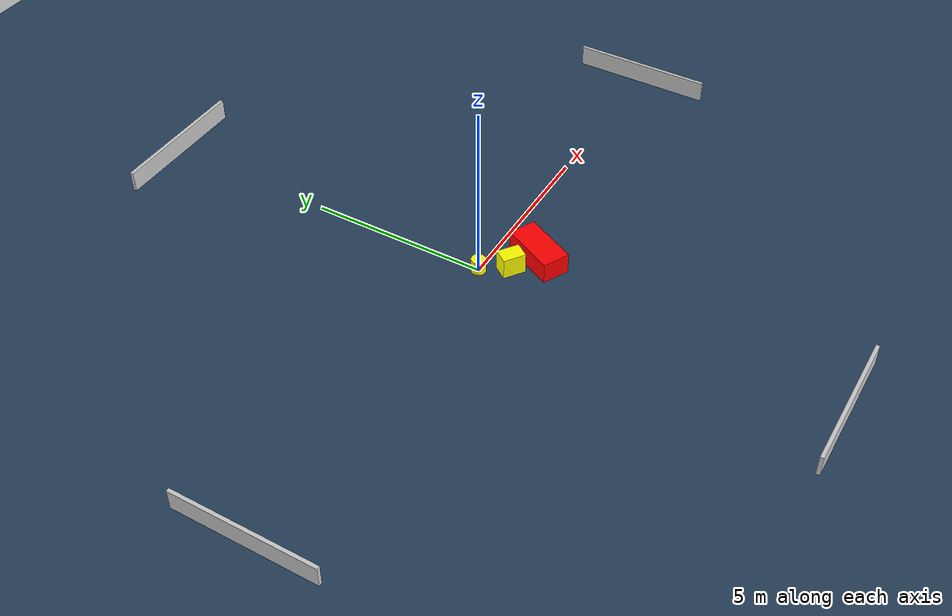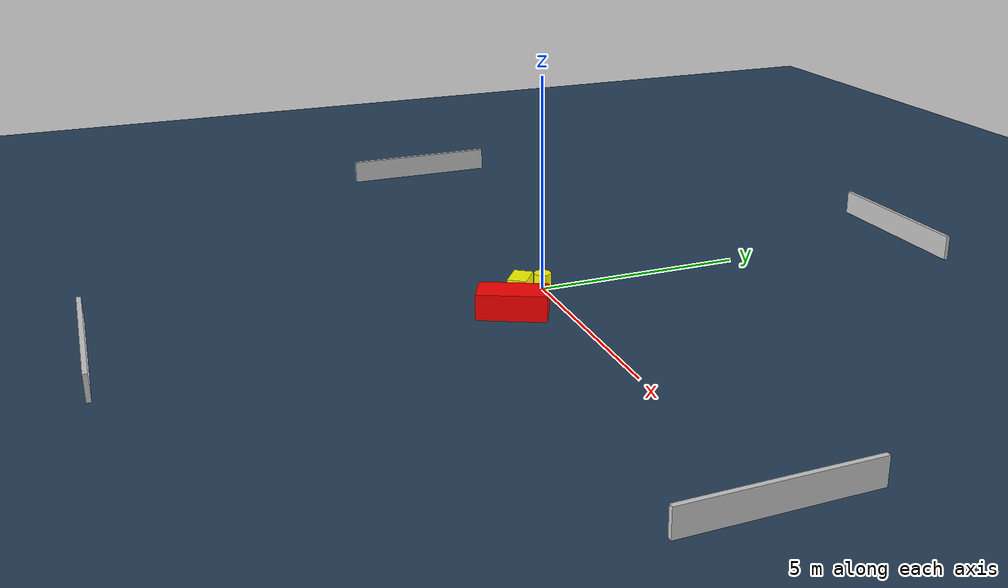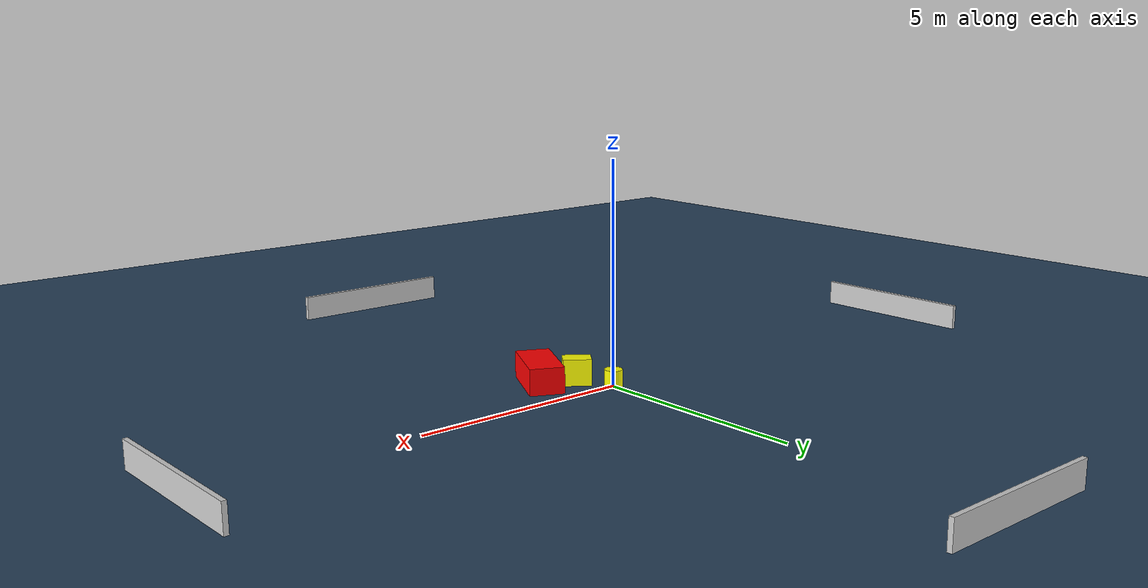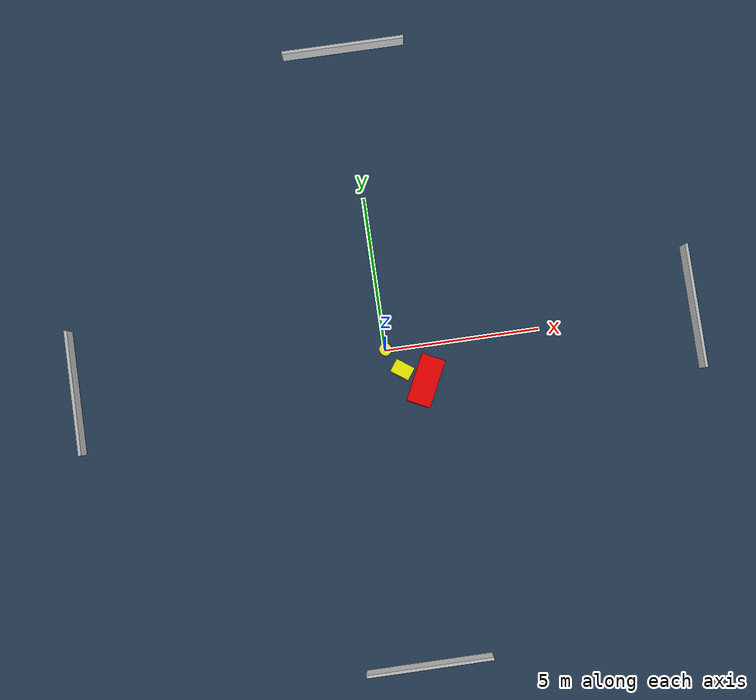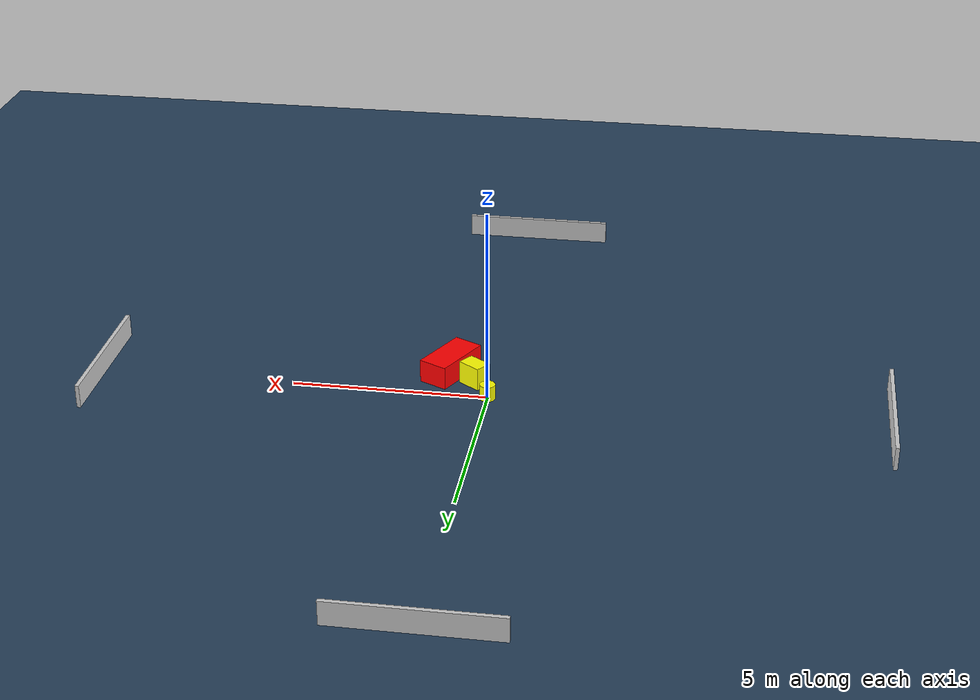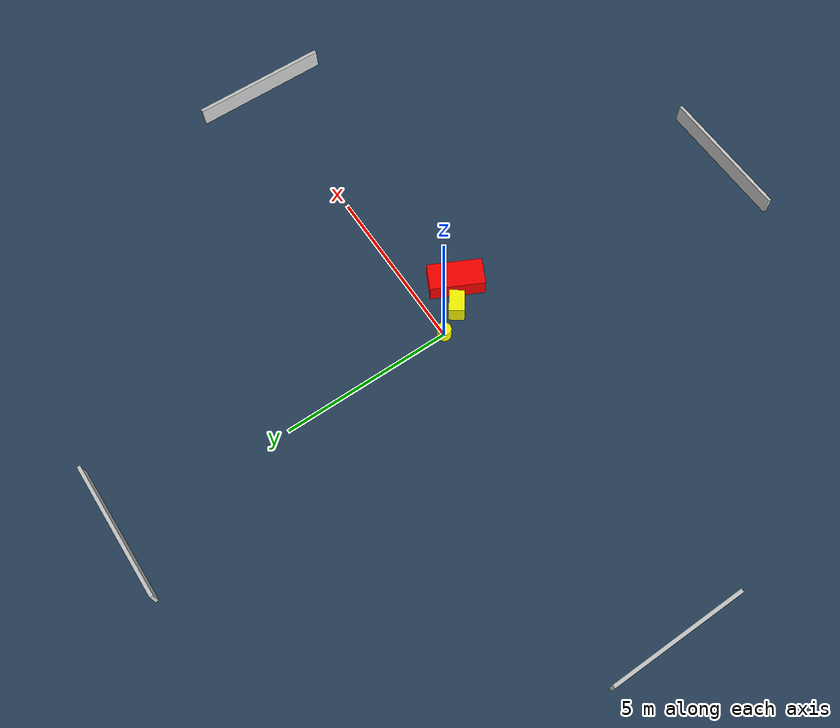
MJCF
<?xml version="1.0" ?>
<mujoco model="generated_environment">
  <option timestep="0.01" integrator="RK4" cone="elliptic"/>
  <default>
    <geom density="1"/>
  </default>
  <asset>
    <texture builtin="gradient" height="3072" name="skybox" rgb1="0.3 0.5 0.7" rgb2="0 0 0" type="skybox" width="512"/>
    <texture builtin="checker" height="300" name="groundplane" rgb1="0.2 0.3 0.4" rgb2="0.1 0.2 0.3" type="2d" width="300"/>
    <material name="groundplane" reflectance="0.2" texrepeat="5 5" texture="groundplane"/>
  </asset>
  <worldbody>
    <light dir="0 0 -1" directional="true" pos="0 0 1.5"/>
    <geom condim="3" friction="0.5 0.005 0.001" material="groundplane" name="floor" pos="0 0 0" size="0 0 0.05" type="plane"/>
    <body name="walls">
      <geom name="wall_1" condim="4" pos="-10.0 0.0 0.3" rgba="0.800000011920929 0.800000011920929 0.800000011920929 1.0" size="0.05 2.0 0.3" type="box"/>
      <geom name="wall_2" condim="4" pos="10.0 0.0 0.3" rgba="0.800000011920929 0.800000011920929 0.800000011920929 1.0" size="0.05 2.0 0.3" type="box"/>
      <geom name="wall_3" condim="4" pos="0.0 -10.0 0.3" rgba="0.800000011920929 0.800000011920929 0.800000011920929 1.0" size="2.0 0.05 0.3" type="box"/>
      <geom name="wall_4" condim="4" pos="0.0 10.0 0.3" rgba="0.800000011920929 0.800000011920929 0.800000011920929 1.0" size="2.0 0.05 0.3" type="box"/>
    </body>
    <body name="robot">
      <joint name="joint_x" type="slide" pos="0 0 0" axis="1 0 0"/>
      <joint name="joint_y" type="slide" pos="0 0 0" axis="0 1 0"/>
      <geom name="robot" type="cylinder" pos="0.0 0.0 0.2" size="0.2 0.2 0.0" mass="5.0" friction="1.0 0.005 0.0001" condim="4" rgba="1.0 1.0 0.0 1.0"/>
    </body>
    <body name="obstacle_1_movable">
      <geom name="obstacle_1_movable" condim="4" pos="0.44402294787571056 -0.7260868783327592 0.3" euler="0 0 234.40364138529637" friction="0.0 0.005 0.001" rgba="1.0 1.0 0.0 1.0" size="0.2212136824183749 0.3185203393413646 0.3" type="box" mass="0.1"/>
      <joint type="free"/>
    </body>
    <body name="obstacle_2_static">
      <geom name="obstacle_2_static" condim="4" pos="1.1351140160658029 -1.1711827978440794 0.3" euler="0 0 333.60496649871106" friction="0.0 0.005 0.001" rgba="1.0 0.0 0.0 1.0" size="0.388315155953857 0.7858608970420142 0.3" type="box"/>
    </body>
  </worldbody>
  <actuator>
    <motor name="actuator_x" joint="joint_x" gear="1" ctrlrange="-1 1"/>
    <motor name="actuator_y" joint="joint_y" gear="1" ctrlrange="-1 1"/>
  </actuator>
</mujoco>
